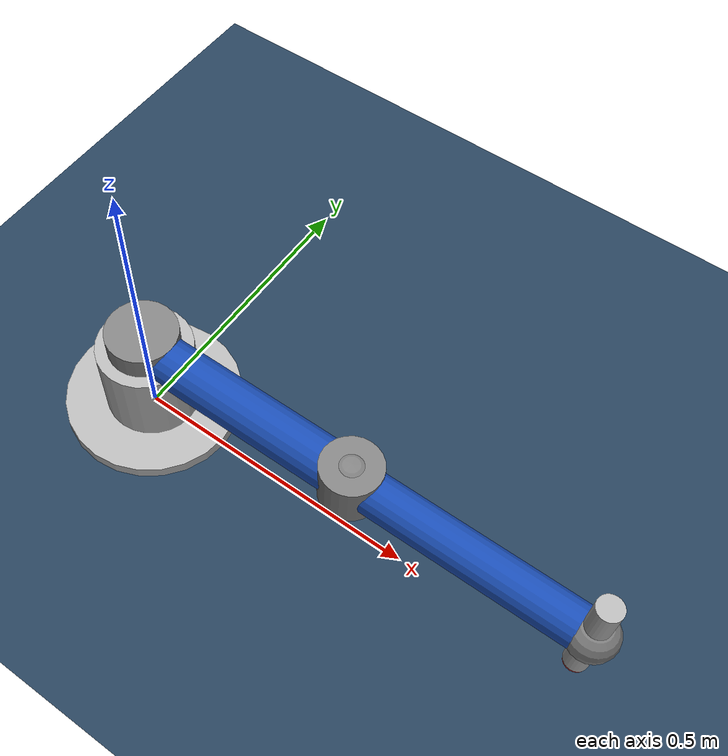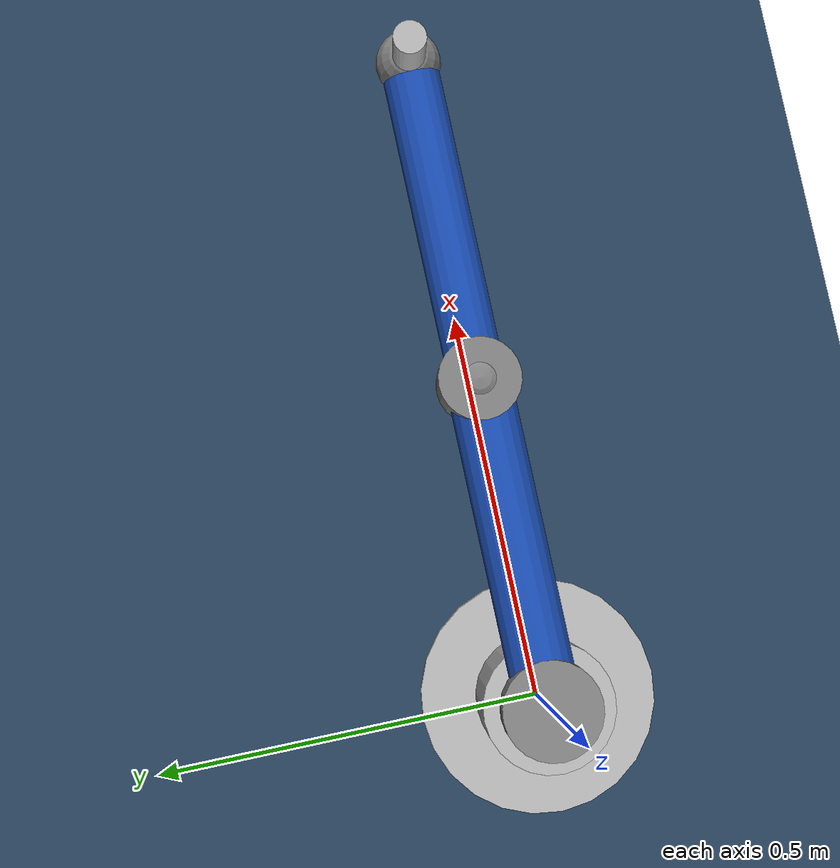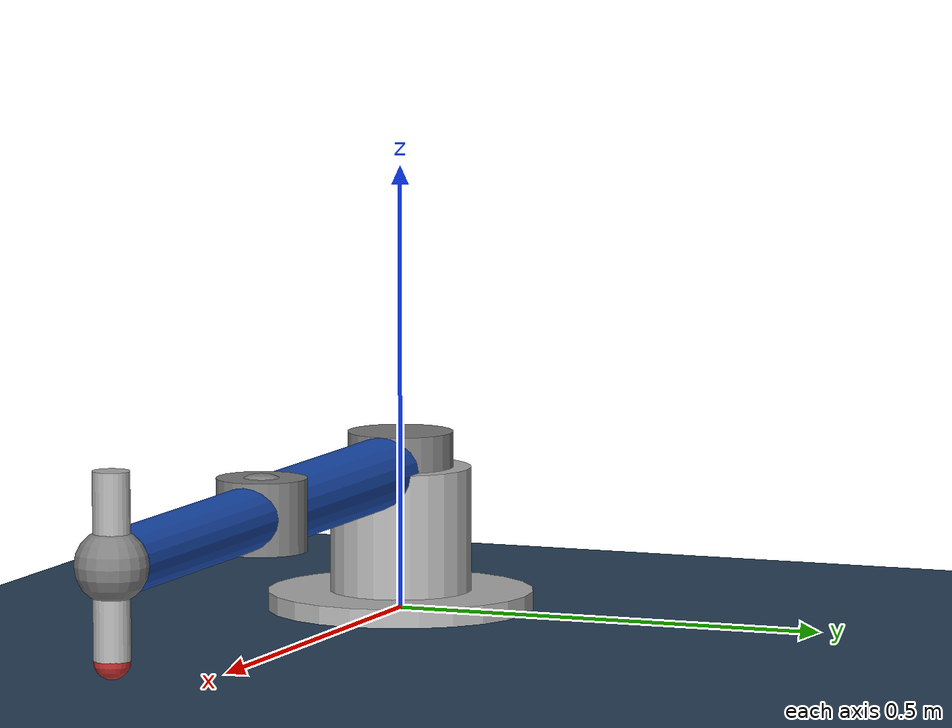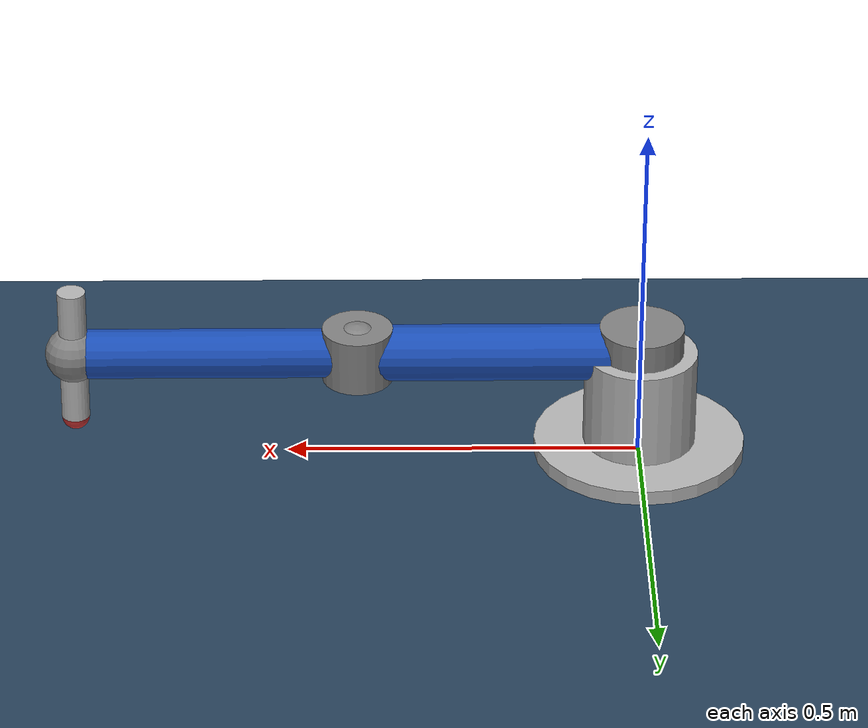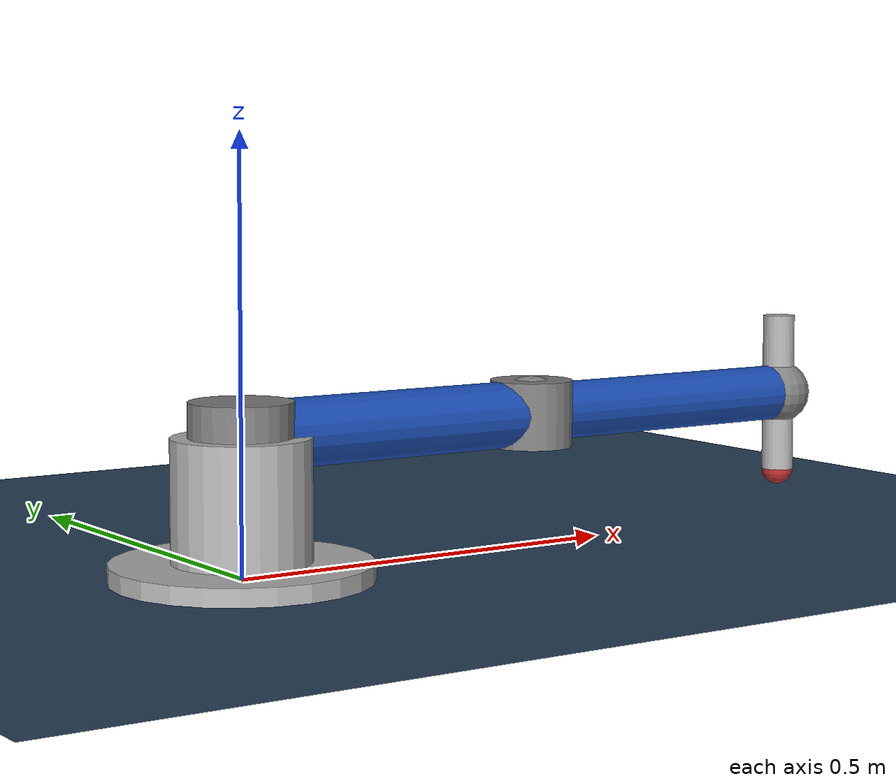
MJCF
<?xml version="1.0" encoding="utf-8"?>
<mujoco>
    <compiler angle="radian" />

    <option gravity="0 0 -9.81" />

    <asset>
        <!-- Materials with metallic and plastic appearances -->
        <material name="metal" rgba="0.7 0.7 0.7 1" shininess="0.8" specular="0.7"/>
        <material name="robot_blue" rgba="0.1 0.3 0.7 1" shininess="0.5" specular="0.5"/>
        <material name="joint_color" rgba="0.5 0.5 0.5 1" shininess="0.8" specular="0.6"/>
        <material name="end_effector" rgba="0.8 0.2 0.2 1" shininess="0.5" specular="0.5"/>
        <material name="floor" rgba="0.9 0.9 0.9 1" shininess="0.1" specular="0.2"/>

        <!-- Textures for more realistic appearance -->
        <texture name="grid" type="2d" builtin="checker" rgb1="0.1 0.2 0.3" rgb2="0.2 0.3 0.4"
                 width="300" height="300" mark="edge" markrgb="0.2 0.3 0.4"/>
        <material name="grid" texture="grid" texrepeat="5 5" texuniform="true"/>
    </asset>

    <visual>
        <headlight ambient="0.4 0.4 0.4" diffuse="0.8 0.8 0.8" specular="0.1 0.1 0.1"/>
        <map shadowclip="0.5"/>
        <quality shadowsize="4096"/>
    </visual>

    <worldbody>
        <!-- Fixed base with more detailed geometry -->
        <light pos="0 0 3" dir="0 0 -1" directional="true"/>
        <body name="base" pos="0 0 0">
            <!-- Base plate -->
            <geom type="cylinder" size="0.15 0.02" material="metal"/>
            <!-- Central column -->
            <geom type="cylinder" size="0.08 0.08" pos="0 0 0.08" material="metal"/>

            <!-- First link -->
            <body name="link1" pos="0 0 0.16">
                <joint name="joint1" type="hinge" axis="0 0 1" damping="0.05"/>
                <!-- Joint housing -->
                <geom type="cylinder" size="0.06 0.04" material="joint_color"/>
                <!-- Arm -->
                <geom type="capsule" size="0.04 0.2" pos="0.2 0 0" quat="0.707 0 0.707 0" material="robot_blue"/>
                <!-- Joint end -->
                <geom type="sphere" size="0.045" pos="0.4 0 0" material="joint_color"/>

                <!-- Second link -->
                <body name="link2" pos="0.4 0 0">
                    <joint name="joint2" type="hinge" axis="0 0 1" damping="0.05"/>
                    <!-- Joint housing -->
                    <geom type="cylinder" size="0.05 0.04" material="joint_color"/>
                    <!-- Arm -->
                    <geom type="capsule" size="0.035 0.18" pos="0.2 0 0" quat="0.707 0 0.707 0" material="robot_blue"/>
                    <!-- Joint end -->
                    <geom type="sphere" size="0.04" pos="0.4 0 0" material="joint_color"/>

                    <!-- End effector -->
                    <body name="end_effector" pos="0.4 0 0">
                        <!-- Modified joint3 configuration -->
                        <joint name="joint3" type="slide" axis="0 0 1" range="-0.2 0" damping="0.05" armature="0.05"/>
                        <!-- Sliding mechanism -->
                        <geom type="cylinder" size="0.02 0.1" material="metal"/>
                        <!-- Tool tip -->
                        <geom type="sphere" size="0.02" pos="0 0 -0.1" material="end_effector"/>
                    </body>
                </body>
            </body>
        </body>

        <!-- Enhanced ground plane -->
        <geom type="plane" size="3 3 0.1" material="grid"/>
    </worldbody>

    <actuator>
        <position joint="joint1" name="pos1" kp="100" kv="20" ctrlrange="-3.14159 3.14159"/>
        <position joint="joint2" name="pos2" kp="100" kv="20" ctrlrange="-3.14159 3.14159"/>
        <position joint="joint3" name="pos3" kp="100" kv="20" ctrlrange="-0.2 0"/>
    </actuator>

    <!-- Add contact pairs for better physics -->
    <contact>
        <exclude body1="link1" body2="base"/>
        <exclude body1="link2" body2="link1"/>
        <exclude body1="end_effector" body2="link2"/>
    </contact>
</mujoco>
